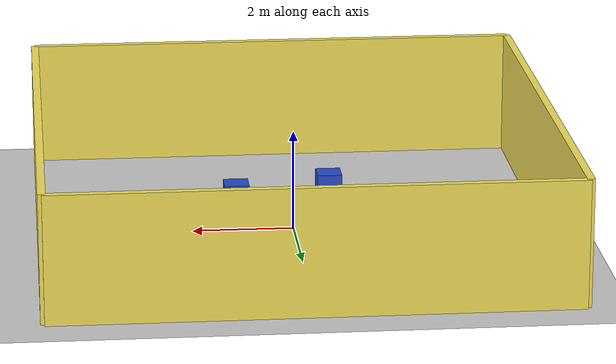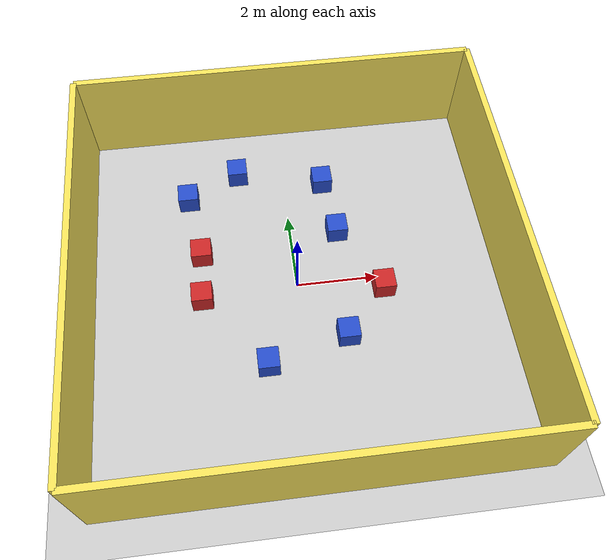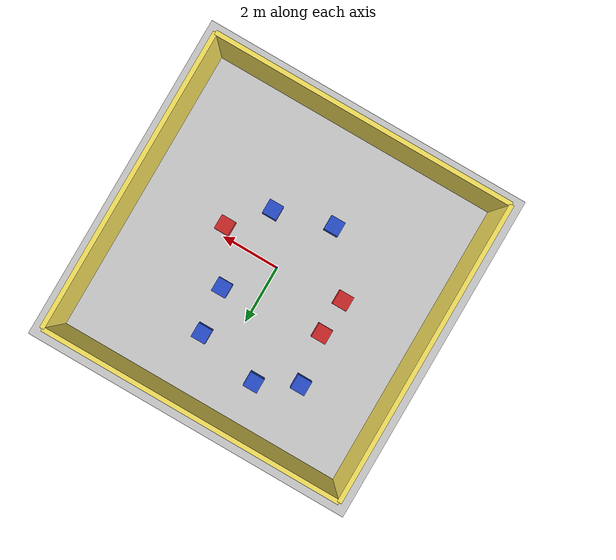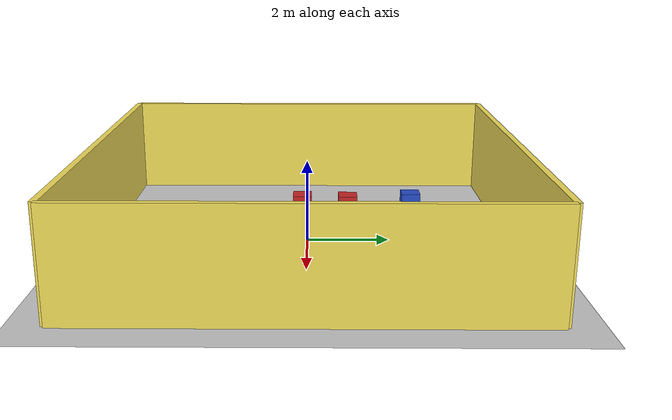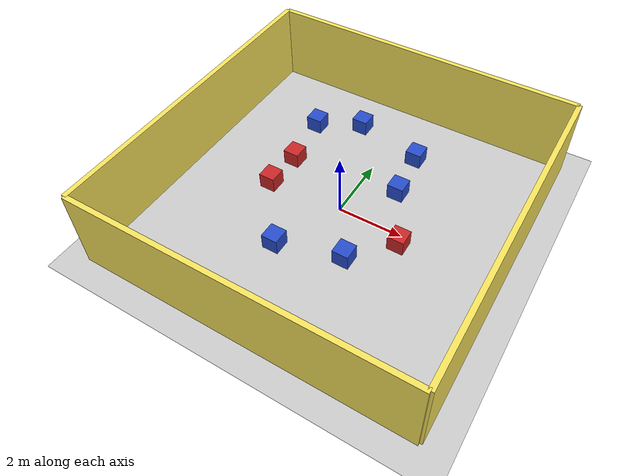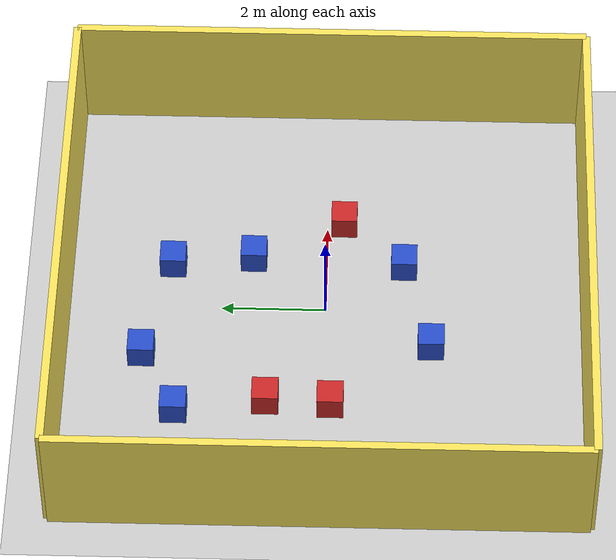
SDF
<sdf version="1.7">
 <world name="default">
  <light name="sun" type="directional">
   <pose>0 0 10 0 -0 0</pose>
   <diffuse>0.8 0.8 0.8 1</diffuse>
   <specular>0.2 0.2 0.2 1</specular>
   <attenuation>
    <range>1000</range>
    <constant>0.9</constant>
    <linear>0.01</linear>
    <quadratic>0.001</quadratic>
   </attenuation>
   <direction>-0.5 0.1 -0.9</direction>
   <spot><inner_angle>0</inner_angle><outer_angle>0</outer_angle><falloff>0</falloff></spot>
  </light>
  <model name="ground_plane">
   <static>1</static>
   <link name="link">
    <collision name="collision">
     <geometry><plane><normal>0 0 1</normal><size>100 100</size></plane></geometry>
     <surface>
      <contact><collide_bitmask>65535</collide_bitmask></contact>
      <friction><ode><mu>100</mu><mu2>50</mu2></ode></friction>
     </surface>
    </collision>
    <visual name="visual">
     <cast_shadows>0</cast_shadows>
     <geometry><plane><normal>0 0 1</normal><size>100 100</size></plane></geometry>
     <material>
      <script><uri>file://media/materials/scripts/gazebo.material</uri><name>Gazebo/Grey</name></script>
     </material>
    </visual>
   </link>
  </model>
  <gravity>0 0 -9.8</gravity>
  <magnetic_field>6e-06 2.3e-05 -4.2e-05</magnetic_field>
  <atmosphere type="adiabatic"/>
  <physics type="ode">
   <max_step_size>0.001</max_step_size>
   <real_time_factor>1</real_time_factor>
   <real_time_update_rate>1000</real_time_update_rate>
  </physics>
  <scene><ambient>0.4 0.4 0.4 1</ambient><background>0.7 0.7 0.7 1</background><shadows>1</shadows></scene>
  <audio><device>default</device></audio>
  <spherical_coordinates>
   <surface_model>EARTH_WGS84</surface_model>
   <latitude_deg>0</latitude_deg>
   <longitude_deg>0</longitude_deg>
   <elevation>0</elevation>
   <heading_deg>0</heading_deg>
  </spherical_coordinates>
  <model name="area">
   <link name="Wall_29">
    <collision name="Wall_29_Collision">
     <geometry><box><size>10 0.15 2.5</size></box></geometry>
     <pose>0 0 1.25 0 -0 0</pose>
    </collision>
    <visual name="Wall_29_Visual">
     <pose>0 0 1.25 0 -0 0</pose>
     <geometry><box><size>10 0.15 2.5</size></box></geometry>
     <material>
      <script><uri>file://media/materials/scripts/gazebo.material</uri><name>Gazebo/Grey</name></script>
      <ambient>0.972549 0.894118 0.360784 1</ambient>
     </material>
     <meta><layer>0</layer></meta>
    </visual>
    <pose>-5 0 0 0 -0 -1.5708</pose>
   </link>
   <link name="Wall_30">
    <collision name="Wall_30_Collision">
     <geometry><box><size>10 0.15 2.5</size></box></geometry>
     <pose>0 0 1.25 0 -0 0</pose>
    </collision>
    <visual name="Wall_30_Visual">
     <pose>0 0 1.25 0 -0 0</pose>
     <geometry><box><size>10 0.15 2.5</size></box></geometry>
     <material>
      <script><uri>file://media/materials/scripts/gazebo.material</uri><name>Gazebo/Grey</name></script>
      <ambient>0.972549 0.894118 0.360784 1</ambient>
     </material>
     <meta><layer>0</layer></meta>
    </visual>
    <pose>0 -5 0 0 -0 0</pose>
   </link>
   <link name="Wall_33">
    <collision name="Wall_33_Collision">
     <geometry><box><size>10 0.15 2.5</size></box></geometry>
     <pose>0 0 1.25 0 -0 0</pose>
    </collision>
    <visual name="Wall_33_Visual">
     <pose>0 0 1.25 0 -0 0</pose>
     <geometry><box><size>10 0.15 2.5</size></box></geometry>
     <material>
      <script><uri>file://media/materials/scripts/gazebo.material</uri><name>Gazebo/Grey</name></script>
      <ambient>0.972549 0.894118 0.360784 1</ambient>
     </material>
     <meta><layer>0</layer></meta>
    </visual>
    <pose>5 0 0 0 -0 1.5708</pose>
   </link>
   <link name="Wall_34">
    <collision name="Wall_34_Collision">
     <geometry><box><size>10 0.15 2.5</size></box></geometry>
     <pose>0 0 1.25 0 -0 0</pose>
    </collision>
    <visual name="Wall_34_Visual">
     <pose>0 0 1.25 0 -0 0</pose>
     <geometry><box><size>10 0.15 2.5</size></box></geometry>
     <material>
      <script><uri>file://media/materials/scripts/gazebo.material</uri><name>Gazebo/Grey</name></script>
      <ambient>0.972549 0.894118 0.360784 1</ambient>
     </material>
     <meta><layer>0</layer></meta>
    </visual>
    <pose>0 5 0 0 -0 3.14159</pose>
   </link>
   <static>1</static>
  </model>
  <model name="red_cube">
   <link name="link_1">
    <inertial>
     <mass>1</mass>
     <inertia>
      <ixx>0.166667</ixx>
      <ixy>0</ixy>
      <ixz>0</ixz>
      <iyy>0.166667</iyy>
      <iyz>0</iyz>
      <izz>0.166667</izz>
     </inertia>
     <pose>0 0 1 0 -0 0</pose>
    </inertial>
    <visual name="visual">
     <pose>0 0 1 0 -0 0</pose>
     <geometry><box><size>0.5 0.5 0.5</size></box></geometry>
     <material>
      <lighting>1</lighting>
      <script><uri>file://media/materials/scripts/gazebo.material</uri><name>Gazebo/Red</name></script>
      <shader type="vertex"><normal_map>__default__</normal_map></shader>
      <ambient>1 0 0 1</ambient>
      <diffuse>1 0 0 1</diffuse>
      <specular>1 0 0 1</specular>
      <emissive>0 0 0 1</emissive>
     </material>
    </visual>
    <collision name="collision">
     <pose>0 0 1 0 -0 0</pose>
     <geometry><box><size>0.5 0.5 0.5</size></box></geometry>
     <surface>
      <friction>
       <ode><mu>1</mu><mu2>1</mu2><fdir1>0 0 0</fdir1><slip1>0</slip1><slip2>0</slip2></ode>
       <torsional>
        <coefficient>1</coefficient>
        <patch_radius>0</patch_radius>
        <surface_radius>0</surface_radius>
        <use_patch_radius>1</use_patch_radius>
        <ode><slip>0</slip></ode>
       </torsional>
      </friction>
      <bounce><restitution_coefficient>0</restitution_coefficient><threshold>1e+06</threshold></bounce>
      <contact>
       <collide_without_contact>0</collide_without_contact>
       <collide_without_contact_bitmask>1</collide_without_contact_bitmask>
       <collide_bitmask>1</collide_bitmask>
       <ode>
        <soft_cfm>0</soft_cfm>
        <soft_erp>0.2</soft_erp>
        <kp>1e+13</kp>
        <kd>1</kd>
        <max_vel>0.01</max_vel>
        <min_depth>0</min_depth>
       </ode>
       <bullet>
        <split_impulse>1</split_impulse>
        <split_impulse_penetration_threshold>-0.01</split_impulse_penetration_threshold>
        <soft_cfm>0</soft_cfm>
        <soft_erp>0.2</soft_erp>
        <kp>1e+13</kp>
        <kd>1</kd>
       </bullet>
      </contact>
     </surface>
    </collision>
   </link>
   <static>0</static>
   <pose>-2.26895 1.08217 -0.75 0 -0 0</pose>
  </model>
  <model name="blue_cube">
   <link name="link_1">
    <inertial>
     <mass>1</mass>
     <inertia>
      <ixx>0.166667</ixx>
      <ixy>0</ixy>
      <ixz>0</ixz>
      <iyy>0.166667</iyy>
      <iyz>0</iyz>
      <izz>0.166667</izz>
     </inertia>
     <pose>0 0 1 0 -0 0</pose>
    </inertial>
    <visual name="visual">
     <pose>0 0 1 0 -0 0</pose>
     <geometry><box><size>0.5 0.5 0.5</size></box></geometry>
     <material>
      <lighting>1</lighting>
      <script><uri>file://media/materials/scripts/gazebo.material</uri><name>Gazebo/Blue</name></script>
      <shader type="vertex"><normal_map>__default__</normal_map></shader>
      <ambient>0 0 1 1</ambient>
      <diffuse>0 0 1 1</diffuse>
      <specular>0 0 1 1</specular>
      <emissive>0 0 0 1</emissive>
     </material>
    </visual>
    <collision name="collision">
     <pose>0 0 1 0 -0 0</pose>
     <geometry><box><size>0.5 0.5 0.5</size></box></geometry>
     <surface>
      <friction>
       <ode><mu>1</mu><mu2>1</mu2><fdir1>0 0 0</fdir1><slip1>0</slip1><slip2>0</slip2></ode>
       <torsional>
        <coefficient>1</coefficient>
        <patch_radius>0</patch_radius>
        <surface_radius>0</surface_radius>
        <use_patch_radius>1</use_patch_radius>
        <ode><slip>0</slip></ode>
       </torsional>
      </friction>
      <bounce><restitution_coefficient>0</restitution_coefficient><threshold>1e+06</threshold></bounce>
      <contact>
       <collide_without_contact>0</collide_without_contact>
       <collide_without_contact_bitmask>1</collide_without_contact_bitmask>
       <collide_bitmask>1</collide_bitmask>
       <ode>
        <soft_cfm>0</soft_cfm>
        <soft_erp>0.2</soft_erp>
        <kp>1e+13</kp>
        <kd>1</kd>
        <max_vel>0.01</max_vel>
        <min_depth>0</min_depth>
       </ode>
       <bullet>
        <split_impulse>1</split_impulse>
        <split_impulse_penetration_threshold>-0.01</split_impulse_penetration_threshold>
        <soft_cfm>0</soft_cfm>
        <soft_erp>0.2</soft_erp>
        <kp>1e+13</kp>
        <kd>1</kd>
       </bullet>
      </contact>
     </surface>
    </collision>
   </link>
   <static>0</static>
   <pose>-0.907634 -2.04039 -0.75 0 -0 0</pose>
  </model>
  <model name="blue_cube_clone">
   <link name="link_1">
    <inertial>
     <mass>1</mass>
     <inertia>
      <ixx>0.166667</ixx>
      <ixy>0</ixy>
      <ixz>0</ixz>
      <iyy>0.166667</iyy>
      <iyz>0</iyz>
      <izz>0.166667</izz>
     </inertia>
     <pose>0 0 1 0 -0 0</pose>
    </inertial>
    <visual name="visual">
     <pose>0 0 1 0 -0 0</pose>
     <geometry><box><size>0.5 0.5 0.5</size></box></geometry>
     <material>
      <lighting>1</lighting>
      <script><uri>file://media/materials/scripts/gazebo.material</uri><name>Gazebo/Blue</name></script>
      <shader type="vertex"><normal_map>__default__</normal_map></shader>
      <ambient>0 0 1 1</ambient>
      <diffuse>0 0 1 1</diffuse>
      <specular>0 0 1 1</specular>
      <emissive>0 0 0 1</emissive>
     </material>
    </visual>
    <collision name="collision">
     <pose>0 0 1 0 -0 0</pose>
     <geometry><box><size>0.5 0.5 0.5</size></box></geometry>
     <surface>
      <friction>
       <ode><mu>1</mu><mu2>1</mu2><fdir1>0 0 0</fdir1><slip1>0</slip1><slip2>0</slip2></ode>
       <torsional>
        <coefficient>1</coefficient>
        <patch_radius>0</patch_radius>
        <surface_radius>0</surface_radius>
        <use_patch_radius>1</use_patch_radius>
        <ode><slip>0</slip></ode>
       </torsional>
      </friction>
      <bounce><restitution_coefficient>0</restitution_coefficient><threshold>1e+06</threshold></bounce>
      <contact>
       <collide_without_contact>0</collide_without_contact>
       <collide_without_contact_bitmask>1</collide_without_contact_bitmask>
       <collide_bitmask>1</collide_bitmask>
       <ode>
        <soft_cfm>0</soft_cfm>
        <soft_erp>0.2</soft_erp>
        <kp>1e+13</kp>
        <kd>1</kd>
        <max_vel>0.01</max_vel>
        <min_depth>0</min_depth>
       </ode>
       <bullet>
        <split_impulse>1</split_impulse>
        <split_impulse_penetration_threshold>-0.01</split_impulse_penetration_threshold>
        <soft_cfm>0</soft_cfm>
        <soft_erp>0.2</soft_erp>
        <kp>1e+13</kp>
        <kd>1</kd>
       </bullet>
      </contact>
     </surface>
    </collision>
   </link>
   <static>0</static>
   <pose>-1.18293 3.48465 -0.75 0 -0 0</pose>
  </model>
  <model name="blue_cube_clone_0">
   <link name="link_1">
    <inertial>
     <mass>1</mass>
     <inertia>
      <ixx>0.166667</ixx>
      <ixy>0</ixy>
      <ixz>0</ixz>
      <iyy>0.166667</iyy>
      <iyz>0</iyz>
      <izz>0.166667</izz>
     </inertia>
     <pose>0 0 1 0 -0 0</pose>
    </inertial>
    <visual name="visual">
     <pose>0 0 1 0 -0 0</pose>
     <geometry><box><size>0.5 0.5 0.5</size></box></geometry>
     <material>
      <lighting>1</lighting>
      <script><uri>file://media/materials/scripts/gazebo.material</uri><name>Gazebo/Blue</name></script>
      <shader type="vertex"><normal_map>__default__</normal_map></shader>
      <ambient>0 0 1 1</ambient>
      <diffuse>0 0 1 1</diffuse>
      <specular>0 0 1 1</specular>
      <emissive>0 0 0 1</emissive>
     </material>
    </visual>
    <collision name="collision">
     <pose>0 0 1 0 -0 0</pose>
     <geometry><box><size>0.5 0.5 0.5</size></box></geometry>
     <surface>
      <friction>
       <ode><mu>1</mu><mu2>1</mu2><fdir1>0 0 0</fdir1><slip1>0</slip1><slip2>0</slip2></ode>
       <torsional>
        <coefficient>1</coefficient>
        <patch_radius>0</patch_radius>
        <surface_radius>0</surface_radius>
        <use_patch_radius>1</use_patch_radius>
        <ode><slip>0</slip></ode>
       </torsional>
      </friction>
      <bounce><restitution_coefficient>0</restitution_coefficient><threshold>1e+06</threshold></bounce>
      <contact>
       <collide_without_contact>0</collide_without_contact>
       <collide_without_contact_bitmask>1</collide_without_contact_bitmask>
       <collide_bitmask>1</collide_bitmask>
       <ode>
        <soft_cfm>0</soft_cfm>
        <soft_erp>0.2</soft_erp>
        <kp>1e+13</kp>
        <kd>1</kd>
        <max_vel>0.01</max_vel>
        <min_depth>0</min_depth>
       </ode>
       <bullet>
        <split_impulse>1</split_impulse>
        <split_impulse_penetration_threshold>-0.01</split_impulse_penetration_threshold>
        <soft_cfm>0</soft_cfm>
        <soft_erp>0.2</soft_erp>
        <kp>1e+13</kp>
        <kd>1</kd>
       </bullet>
      </contact>
     </surface>
    </collision>
   </link>
   <static>0</static>
   <pose>1.02816 -1.50809 -0.75 0 -0 0</pose>
  </model>
  <model name="blue_cube_clone_clone">
   <link name="link_1">
    <inertial>
     <mass>1</mass>
     <inertia>
      <ixx>0.166667</ixx>
      <ixy>0</ixy>
      <ixz>0</ixz>
      <iyy>0.166667</iyy>
      <iyz>0</iyz>
      <izz>0.166667</izz>
     </inertia>
     <pose>0 0 1 0 -0 0</pose>
    </inertial>
    <visual name="visual">
     <pose>0 0 1 0 -0 0</pose>
     <geometry><box><size>0.5 0.5 0.5</size></box></geometry>
     <material>
      <lighting>1</lighting>
      <script><uri>file://media/materials/scripts/gazebo.material</uri><name>Gazebo/Blue</name></script>
      <shader type="vertex"><normal_map>__default__</normal_map></shader>
      <ambient>0 0 1 1</ambient>
      <diffuse>0 0 1 1</diffuse>
      <specular>0 0 1 1</specular>
      <emissive>0 0 0 1</emissive>
     </material>
    </visual>
    <collision name="collision">
     <pose>0 0 1 0 -0 0</pose>
     <geometry><box><size>0.5 0.5 0.5</size></box></geometry>
     <surface>
      <friction>
       <ode><mu>1</mu><mu2>1</mu2><fdir1>0 0 0</fdir1><slip1>0</slip1><slip2>0</slip2></ode>
       <torsional>
        <coefficient>1</coefficient>
        <patch_radius>0</patch_radius>
        <surface_radius>0</surface_radius>
        <use_patch_radius>1</use_patch_radius>
        <ode><slip>0</slip></ode>
       </torsional>
      </friction>
      <bounce><restitution_coefficient>0</restitution_coefficient><threshold>1e+06</threshold></bounce>
      <contact>
       <collide_without_contact>0</collide_without_contact>
       <collide_without_contact_bitmask>1</collide_without_contact_bitmask>
       <collide_bitmask>1</collide_bitmask>
       <ode>
        <soft_cfm>0</soft_cfm>
        <soft_erp>0.2</soft_erp>
        <kp>1e+13</kp>
        <kd>1</kd>
        <max_vel>0.01</max_vel>
        <min_depth>0</min_depth>
       </ode>
       <bullet>
        <split_impulse>1</split_impulse>
        <split_impulse_penetration_threshold>-0.01</split_impulse_penetration_threshold>
        <soft_cfm>0</soft_cfm>
        <soft_erp>0.2</soft_erp>
        <kp>1e+13</kp>
        <kd>1</kd>
       </bullet>
      </contact>
     </surface>
    </collision>
   </link>
   <static>0</static>
   <pose>1.00297 2.97744 -0.75 0 -0 0</pose>
  </model>
  <model name="blue_cube_clone_clone_clone">
   <link name="link_1">
    <inertial>
     <mass>1</mass>
     <inertia>
      <ixx>0.166667</ixx>
      <ixy>0</ixy>
      <ixz>0</ixz>
      <iyy>0.166667</iyy>
      <iyz>0</iyz>
      <izz>0.166667</izz>
     </inertia>
     <pose>0 0 1 0 -0 0</pose>
    </inertial>
    <visual name="visual">
     <pose>0 0 1 0 -0 0</pose>
     <geometry><box><size>0.5 0.5 0.5</size></box></geometry>
     <material>
      <lighting>1</lighting>
      <script><uri>file://media/materials/scripts/gazebo.material</uri><name>Gazebo/Blue</name></script>
      <shader type="vertex"><normal_map>__default__</normal_map></shader>
      <ambient>0 0 1 1</ambient>
      <diffuse>0 0 1 1</diffuse>
      <specular>0 0 1 1</specular>
      <emissive>0 0 0 1</emissive>
     </material>
    </visual>
    <collision name="collision">
     <pose>0 0 1 0 -0 0</pose>
     <geometry><box><size>0.5 0.5 0.5</size></box></geometry>
     <surface>
      <friction>
       <ode><mu>1</mu><mu2>1</mu2><fdir1>0 0 0</fdir1><slip1>0</slip1><slip2>0</slip2></ode>
       <torsional>
        <coefficient>1</coefficient>
        <patch_radius>0</patch_radius>
        <surface_radius>0</surface_radius>
        <use_patch_radius>1</use_patch_radius>
        <ode><slip>0</slip></ode>
       </torsional>
      </friction>
      <bounce><restitution_coefficient>0</restitution_coefficient><threshold>1e+06</threshold></bounce>
      <contact>
       <collide_without_contact>0</collide_without_contact>
       <collide_without_contact_bitmask>1</collide_without_contact_bitmask>
       <collide_bitmask>1</collide_bitmask>
       <ode>
        <soft_cfm>0</soft_cfm>
        <soft_erp>0.2</soft_erp>
        <kp>1e+13</kp>
        <kd>1</kd>
        <max_vel>0.01</max_vel>
        <min_depth>0</min_depth>
       </ode>
       <bullet>
        <split_impulse>1</split_impulse>
        <split_impulse_penetration_threshold>-0.01</split_impulse_penetration_threshold>
        <soft_cfm>0</soft_cfm>
        <soft_erp>0.2</soft_erp>
        <kp>1e+13</kp>
        <kd>1</kd>
       </bullet>
      </contact>
     </surface>
    </collision>
   </link>
   <static>0</static>
   <pose>1.17941 1.41514 -0.75 0 -0 0</pose>
  </model>
  <model name="blue_cube_clone_0_clone_0">
   <link name="link_1">
    <inertial>
     <mass>1</mass>
     <inertia>
      <ixx>0.166667</ixx>
      <ixy>0</ixy>
      <ixz>0</ixz>
      <iyy>0.166667</iyy>
      <iyz>0</iyz>
      <izz>0.166667</izz>
     </inertia>
     <pose>0 0 1 0 -0 0</pose>
    </inertial>
    <visual name="visual">
     <pose>0 0 1 0 -0 0</pose>
     <geometry><box><size>0.5 0.5 0.5</size></box></geometry>
     <material>
      <lighting>1</lighting>
      <script><uri>file://media/materials/scripts/gazebo.material</uri><name>Gazebo/Blue</name></script>
      <shader type="vertex"><normal_map>__default__</normal_map></shader>
      <ambient>0 0 1 1</ambient>
      <diffuse>0 0 1 1</diffuse>
      <specular>0 0 1 1</specular>
      <emissive>0 0 0 1</emissive>
     </material>
    </visual>
    <collision name="collision">
     <pose>0 0 1 0 -0 0</pose>
     <geometry><box><size>0.5 0.5 0.5</size></box></geometry>
     <surface>
      <friction>
       <ode><mu>1</mu><mu2>1</mu2><fdir1>0 0 0</fdir1><slip1>0</slip1><slip2>0</slip2></ode>
       <torsional>
        <coefficient>1</coefficient>
        <patch_radius>0</patch_radius>
        <surface_radius>0</surface_radius>
        <use_patch_radius>1</use_patch_radius>
        <ode><slip>0</slip></ode>
       </torsional>
      </friction>
      <bounce><restitution_coefficient>0</restitution_coefficient><threshold>1e+06</threshold></bounce>
      <contact>
       <collide_without_contact>0</collide_without_contact>
       <collide_without_contact_bitmask>1</collide_without_contact_bitmask>
       <collide_bitmask>1</collide_bitmask>
       <ode>
        <soft_cfm>0</soft_cfm>
        <soft_erp>0.2</soft_erp>
        <kp>1e+13</kp>
        <kd>1</kd>
        <max_vel>0.01</max_vel>
        <min_depth>0</min_depth>
       </ode>
       <bullet>
        <split_impulse>1</split_impulse>
        <split_impulse_penetration_threshold>-0.01</split_impulse_penetration_threshold>
        <soft_cfm>0</soft_cfm>
        <soft_erp>0.2</soft_erp>
        <kp>1e+13</kp>
        <kd>1</kd>
       </bullet>
      </contact>
     </surface>
    </collision>
   </link>
   <static>0</static>
   <pose>-2.51051 2.80547 -0.75 0 -0 0</pose>
  </model>
  <model name="red_cube_clone">
   <link name="link_1">
    <inertial>
     <mass>1</mass>
     <inertia>
      <ixx>0.166667</ixx>
      <ixy>0</ixy>
      <ixz>0</ixz>
      <iyy>0.166667</iyy>
      <iyz>0</iyz>
      <izz>0.166667</izz>
     </inertia>
     <pose>0 0 1 0 -0 0</pose>
    </inertial>
    <visual name="visual">
     <pose>0 0 1 0 -0 0</pose>
     <geometry><box><size>0.5 0.5 0.5</size></box></geometry>
     <material>
      <lighting>1</lighting>
      <script><uri>file://media/materials/scripts/gazebo.material</uri><name>Gazebo/Red</name></script>
      <shader type="vertex"><normal_map>__default__</normal_map></shader>
      <ambient>1 0 0 1</ambient>
      <diffuse>1 0 0 1</diffuse>
      <specular>1 0 0 1</specular>
      <emissive>0 0 0 1</emissive>
     </material>
    </visual>
    <collision name="collision">
     <pose>0 0 1 0 -0 0</pose>
     <geometry><box><size>0.5 0.5 0.5</size></box></geometry>
     <surface>
      <friction>
       <ode><mu>1</mu><mu2>1</mu2><fdir1>0 0 0</fdir1><slip1>0</slip1><slip2>0</slip2></ode>
       <torsional>
        <coefficient>1</coefficient>
        <patch_radius>0</patch_radius>
        <surface_radius>0</surface_radius>
        <use_patch_radius>1</use_patch_radius>
        <ode><slip>0</slip></ode>
       </torsional>
      </friction>
      <bounce><restitution_coefficient>0</restitution_coefficient><threshold>1e+06</threshold></bounce>
      <contact>
       <collide_without_contact>0</collide_without_contact>
       <collide_without_contact_bitmask>1</collide_without_contact_bitmask>
       <collide_bitmask>1</collide_bitmask>
       <ode>
        <soft_cfm>0</soft_cfm>
        <soft_erp>0.2</soft_erp>
        <kp>1e+13</kp>
        <kd>1</kd>
        <max_vel>0.01</max_vel>
        <min_depth>0</min_depth>
       </ode>
       <bullet>
        <split_impulse>1</split_impulse>
        <split_impulse_penetration_threshold>-0.01</split_impulse_penetration_threshold>
        <soft_cfm>0</soft_cfm>
        <soft_erp>0.2</soft_erp>
        <kp>1e+13</kp>
        <kd>1</kd>
       </bullet>
      </contact>
     </surface>
    </collision>
   </link>
   <static>0</static>
   <pose>2.08533 -0.32479 -0.75 0 -0 0</pose>
  </model>
  <model name="red_cube_clone_0">
   <link name="link_1">
    <inertial>
     <mass>1</mass>
     <inertia>
      <ixx>0.166667</ixx>
      <ixy>0</ixy>
      <ixz>0</ixz>
      <iyy>0.166667</iyy>
      <iyz>0</iyz>
      <izz>0.166667</izz>
     </inertia>
     <pose>0 0 1 0 -0 0</pose>
    </inertial>
    <visual name="visual">
     <pose>0 0 1 0 -0 0</pose>
     <geometry><box><size>0.5 0.5 0.5</size></box></geometry>
     <material>
      <lighting>1</lighting>
      <script><uri>file://media/materials/scripts/gazebo.material</uri><name>Gazebo/Red</name></script>
      <shader type="vertex"><normal_map>__default__</normal_map></shader>
      <ambient>1 0 0 1</ambient>
      <diffuse>1 0 0 1</diffuse>
      <specular>1 0 0 1</specular>
      <emissive>0 0 0 1</emissive>
     </material>
    </visual>
    <collision name="collision">
     <pose>0 0 1 0 -0 0</pose>
     <geometry><box><size>0.5 0.5 0.5</size></box></geometry>
     <surface>
      <friction>
       <ode><mu>1</mu><mu2>1</mu2><fdir1>0 0 0</fdir1><slip1>0</slip1><slip2>0</slip2></ode>
       <torsional>
        <coefficient>1</coefficient>
        <patch_radius>0</patch_radius>
        <surface_radius>0</surface_radius>
        <use_patch_radius>1</use_patch_radius>
        <ode><slip>0</slip></ode>
       </torsional>
      </friction>
      <bounce><restitution_coefficient>0</restitution_coefficient><threshold>1e+06</threshold></bounce>
      <contact>
       <collide_without_contact>0</collide_without_contact>
       <collide_without_contact_bitmask>1</collide_without_contact_bitmask>
       <collide_bitmask>1</collide_bitmask>
       <ode>
        <soft_cfm>0</soft_cfm>
        <soft_erp>0.2</soft_erp>
        <kp>1e+13</kp>
        <kd>1</kd>
        <max_vel>0.01</max_vel>
        <min_depth>0</min_depth>
       </ode>
       <bullet>
        <split_impulse>1</split_impulse>
        <split_impulse_penetration_threshold>-0.01</split_impulse_penetration_threshold>
        <soft_cfm>0</soft_cfm>
        <soft_erp>0.2</soft_erp>
        <kp>1e+13</kp>
        <kd>1</kd>
       </bullet>
      </contact>
     </surface>
    </collision>
   </link>
   <static>0</static>
   <pose>-2.32031 -0.146858 -0.75 0 -0 0</pose>
  </model>
 </world>
</sdf>
